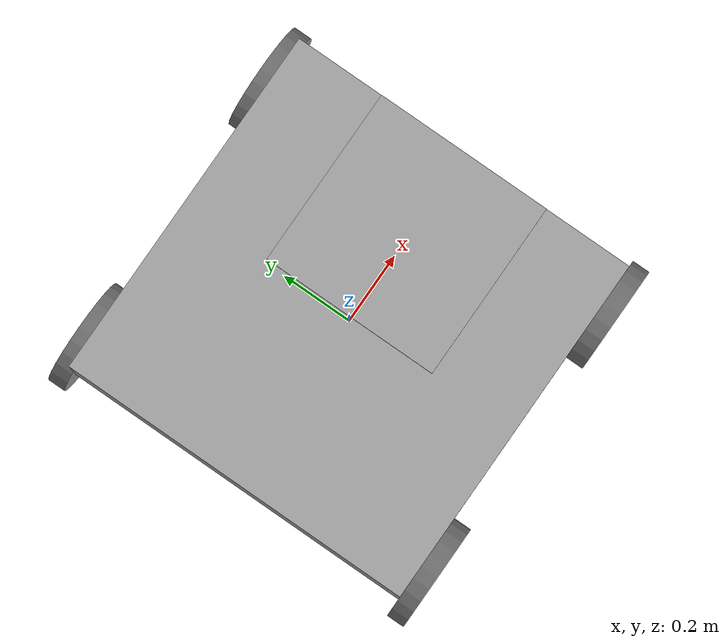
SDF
<?xml version='1.0'?>
<sdf version='1.4'>
  <model name="my_robot">
    <static>false</static>
    <link name='chassis'>
      <pose>0 0 0 0 0 0</pose>

      <collision name='collision'>
        <geometry>
          <box>
            <size>1 1 .3</size>
          </box>
        </geometry>
      </collision>

      <visual name='visual'>
        <geometry>
          <box>
            <size>1 1 .3</size>
          </box>
        </geometry>
      </visual>
    </link>

    <link name='aruco_marker_link'>
      <pose>0 0 0.15 0 1.5707 0</pose>
      <visual name="visual">
        <geometry>
          <mesh>
            <uri>model://aruco-420/meshes/aruco-420.dae</uri>
          <scale>1.0 1.0 1.0</scale>
          </mesh>
        </geometry>
      </visual>
    </link>

    <link name="front_left_wheel">
      <pose>0.4 0.525 -0.15 0 1.5707 1.5707</pose>
      <collision name="collision">
        <geometry>
          <cylinder>
            <radius>.15</radius>
            <length>.05</length>
          </cylinder>
        </geometry>
      </collision>
      <visual name="visual">
        <material> <!-- Wheel material -->
            <ambient>0.5 0.5 0.5 1</ambient>
            <diffuse>0.5 0.5 0.5 1</diffuse>
            <specular>0 0 0 0</specular>
            <emissive>0 0 0 1</emissive>
        </material> <!-- End wheel material -->
        <geometry>
          <cylinder>
            <radius>.15</radius>
            <length>.05</length>
          </cylinder>
        </geometry>
      </visual>
    </link>

    <link name="front_right_wheel">
      <pose>0.4 -0.525 -0.15 0 1.5707 1.5707</pose>
      <collision name="collision">
        <geometry>
          <cylinder>
            <radius>.15</radius>
            <length>.05</length>
          </cylinder>
        </geometry>
      </collision>
      <visual name="visual">
        <material> <!-- Wheel material -->
            <ambient>0.5 0.5 0.5 1</ambient>
            <diffuse>0.5 0.5 0.5 1</diffuse>
            <specular>0 0 0 0</specular>
            <emissive>0 0 0 1</emissive>
        </material> <!-- End wheel material -->
        <geometry>
          <cylinder>
            <radius>.15</radius>
            <length>.05</length>
          </cylinder>
        </geometry>
      </visual>
    </link>

    <link name="rear_left_wheel">
      <pose>-0.4 0.525 -0.15 0 1.5707 1.5707</pose>
      <collision name="collision">
        <geometry>
          <cylinder>
            <radius>.15</radius>
            <length>.05</length>
          </cylinder>
        </geometry>
      </collision>
      <visual name="visual">
        <material> <!-- Wheel material -->
            <ambient>0.5 0.5 0.5 1</ambient>
            <diffuse>0.5 0.5 0.5 1</diffuse>
            <specular>0 0 0 0</specular>
            <emissive>0 0 0 1</emissive>
        </material> <!-- End wheel material -->
        <geometry>
          <cylinder>
            <radius>.15</radius>
            <length>.05</length>
          </cylinder>
        </geometry>
      </visual>
    </link>

    <link name="rear_right_wheel">
      <pose>-0.4 -0.525 -0.15 0 1.5707 1.5707</pose>
      <collision name="collision">
        <geometry>
          <cylinder>
            <radius>.15</radius>
            <length>.05</length>
          </cylinder>
        </geometry>
      </collision>
      <visual name="visual">
        <material> <!-- Wheel material -->
            <ambient>0.5 0.5 0.5 1</ambient>
            <diffuse>0.5 0.5 0.5 1</diffuse>
            <specular>0 0 0 0</specular>
            <emissive>0 0 0 1</emissive>
        </material> <!-- End wheel material -->
        <geometry>
          <cylinder>
            <radius>.15</radius>
            <length>.05</length>
          </cylinder>
        </geometry>
      </visual>
    </link>

    <joint type="fixed" name="aruco_joint">
      <pose>0 0 0 0 0 0</pose>
      <child>aruco_marker_link</child>
      <parent>chassis</parent>
    </joint>

    <joint type="revolute" name="rear_left_wheel_joint">
      <pose>0 0 -0.03 0 0 0</pose>
      <child>rear_left_wheel</child>
      <parent>chassis</parent>
      <axis>
        <xyz>0 1 0</xyz>
      </axis>
    </joint>

    <joint type="revolute" name="rear_right_wheel_joint">
      <pose>0 0 0.03 0 0 0</pose>
      <child>rear_right_wheel</child>
      <parent>chassis</parent>
      <axis>
        <xyz>0 1 0</xyz>
      </axis>
    </joint>

    <joint type="revolute" name="front_left_wheel_joint">
      <pose>0 0 -0.03 0 0 0</pose>
      <child>front_left_wheel</child>
      <parent>chassis</parent>
      <axis>
        <xyz>0 1 0</xyz>
      </axis>
    </joint>

    <joint type="revolute" name="front_right_wheel_joint">
      <pose>0 0 0.03 0 0 0</pose>
      <child>front_right_wheel</child>
      <parent>chassis</parent>
      <axis>
        <xyz>0 1 0</xyz>
      </axis>
    </joint>

    <plugin name='wheel_drive_controller' filename='libgazebo_ros_diff_drive.so'>
      <!-- wheels -->
      <num_wheel_pairs>2</num_wheel_pairs>
      <left_joint>front_left_wheel_joint</left_joint>
      <left_joint>rear_left_wheel_joint</left_joint>
      <right_joint>front_right_wheel_joint</right_joint>
      <right_joint>rear_right_wheel_joint</right_joint>

      <!-- kinematics -->
      <wheel_separation>1</wheel_separation>
      <wheel_diameter>0.3</wheel_diameter>
      <max_wheel_torque>20.0</max_wheel_torque>
      <max_wheel_acceleration>10.0</max_wheel_acceleration>

      <!-- odometry  -->
      <odometry_frame>map</odometry_frame>
      <robot_base_frame>chassis</robot_base_frame>
      <command_topic>cmd_vel</command_topic>

      <publish_odom>true</publish_odom>
      <publish_odom_tf>true</publish_odom_tf>
      <update_rate>100.0</update_rate>
    </plugin>
  </model>
</sdf>
